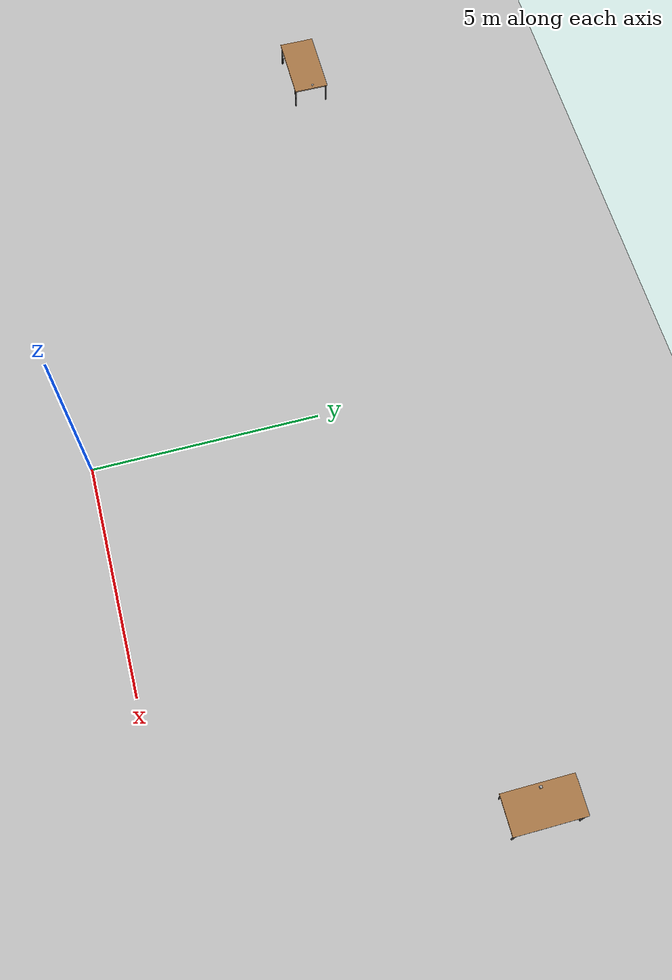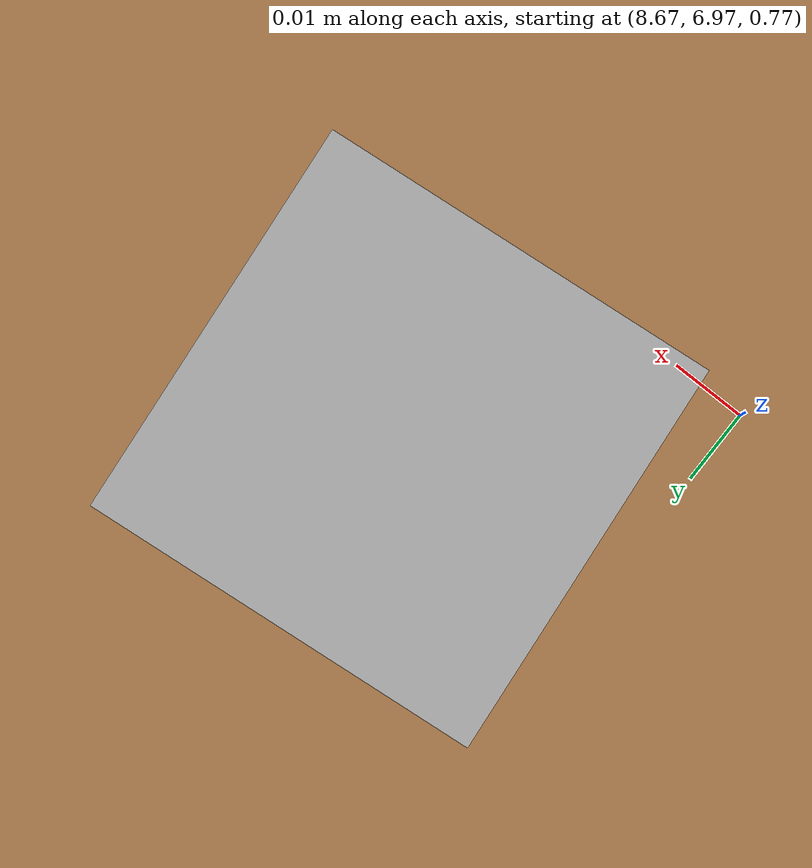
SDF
<sdf version="1.9">
 <world name="world_template">
  <physics type="ode">
   <max_step_size>0.004</max_step_size>
   <real_time_factor>1.0</real_time_factor>
   <real_time_update_rate>250</real_time_update_rate>
  </physics>
  <plugin filename="gz-sim-physics-system" name="gz::sim::systems::Physics"/>
  <plugin filename="gz-sim-user-commands-system" name="gz::sim::systems::UserCommands"/>
  <plugin filename="gz-sim-scene-broadcaster-system" name="gz::sim::systems::SceneBroadcaster"/>
  <plugin filename="gz-sim-sensors-system" name="gz::sim::systems::Sensors">
   <render_engine>ogre2</render_engine>
  </plugin>
  <plugin filename="gz-sim-imu-system" name="gz::sim::systems::Imu"/>
  <gravity>0.0 0.0 -9.8</gravity>
  <scene>
   <ambient>0.4 0.4 0.4 1</ambient>
   <background>0.7 0.7 0.7 1</background>
   <shadows>false</shadows>
   <grid>false</grid>
   <origin_visual>false</origin_visual>
  </scene>
  <light name="sun" type="directional">
   <pose>0 0 10 0 -0 0</pose>
   <diffuse>0.8 0.8 0.8 1</diffuse>
   <specular>0.2 0.2 0.2 1</specular>
   <attenuation>
    <range>1000</range>
    <constant>0.9</constant>
    <linear>0.01</linear>
    <quadratic>0.001</quadratic>
   </attenuation>
   <direction>-0.5 0.1 -0.9</direction>
  </light>
  <model name="ground_plane">
   <static>true</static>
   <link name="link">
    <collision name="collision">
     <geometry><plane><normal>0 0 1</normal><size>100 100</size></plane></geometry>
    </collision>
    <visual name="visual">
     <geometry><plane><normal>0 0 1</normal><size>100 100</size></plane></geometry>
     <material>
      <ambient>0.8 0.8 0.8 1</ambient>
      <diffuse>0.8 0.8 0.8 1</diffuse>
      <specular>0.8 0.8 0.8 1</specular>
     </material>
    </visual>
    <inertial>
     <mass>1</mass>
     <inertia><ixx>1</ixx><ixy>0</ixy><ixz>0</ixz><iyy>1</iyy><iyz>0</iyz><izz>1</izz></inertia>
    </inertial>
   </link>
  </model>
  <model name="Box1"><include><uri>model://Box1</uri><pose>8.7 7.0 0.8 0.0 0.0 0.1</pose></include></model>
  <model name="Box2">
   <include><uri>model://Box2</uri><pose>-8.367965507507324 7.052602767944336 0.62 0.0 0.0 0.1</pose></include>
  </model>
  <model name="table0">
   <include><uri>model://table</uri><pose>9 7 0.0 0.0 0.0 -1.5707963267948966</pose></include>
  </model>
  <model name="table1"><include><uri>model://table</uri><pose>-9 7 0.0 0.0 0.0 0.0</pose></include></model>
 </world>
</sdf>

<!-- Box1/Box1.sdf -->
<sdf version="1.6">

<model name="Box1">

  <static>false</static>

    <link name="Aruco_box">

    <!-- Box -->
      <visual name="Box">
        <pose>0.0 0 0 0 0 0</pose>
        <geometry>
          <box>
            <size>0.05 0.05 0.05</size>
          </box>
        </geometry>
        <material>
          <ambient>0.7 0.7 0.7 1</ambient>
          <diffuse>0.7 0.7 0.7 1</diffuse>
          <specular>0.1 0.1 0.1 1</specular>
        </material>
      </visual>

      <collision name="Box_collision">
        <pose>0.0 0 0 0 0 0</pose>
        <geometry>
          <box>
            <size>0.05 0.05 0.05</size>
          </box>
        </geometry>

  <surface>
    <friction>
      <ode>
        <mu>5.0</mu>
        <mu2>5.0</mu2>
      </ode>
    </friction>
  </surface>

      </collision>

      <!-- Top aruco face -->
     <visual name="Top">
        <pose>-0.025 0 0.025 0 1.57 0</pose>
        <geometry>
          <mesh>
            <uri>meshes/Box1.dae</uri>
            <scale>0.1 0.1 0.1</scale>
          </mesh>
        </geometry>
      </visual>

  <inertial>
    <mass value="0.5"/>
    <inertia ixx="0.001633333" ixy="0.0" ixz="0.0" iyy="0.001633333" iyz="0.0" izz="0.001633333"/>
  </inertial>

  </link>
  </model>

</sdf>

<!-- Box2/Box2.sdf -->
<sdf version="1.6">

<model name="Box2">

  <static>false</static>

    <link name="Aruco_box">

     <!-- Top aruco face -->
     <visual name="Top">
        <pose>0 0 0 0 1.57 0</pose>
        <geometry>
          <mesh>
            <uri>meshes/Box1.dae</uri>
            <scale>0.1 0.1 0.1</scale>
          </mesh>
        </geometry>
      </visual>

  <collision name="Box_collision">
        <pose>0 0 0 0 0 0</pose>
        <geometry>
          <box>
            <size>0.005 0.005 0.005</size>
          </box>
        </geometry>

  <surface>
    <friction>
      <ode>
        <mu>2.0</mu>
        <mu2>2.0</mu2>
      </ode>
    </friction>
  </surface>

  </collision>

  <inertial>
    <mass value="0.5"/>
    <inertia ixx="0.001633333" ixy="0.0" ixz="0.0" iyy="0.001633333" iyz="0.0" izz="0.001633333"/>
  </inertial>

  </link>
  </model>

</sdf>

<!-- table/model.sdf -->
<sdf version="1.5">
  <model name="table">
    <static>true</static>
    <link name="link">
      <collision name="surface">
        <pose>0 0 0.60 0 0 0</pose>
        <geometry>
          <box>
            <size>1.5 0.8 0.03</size>
          </box>
        </geometry>
        <surface>
          <friction>
            <ode>
              <mu>0.6</mu>
              <mu2>0.6</mu2>
            </ode>
          </friction>
        </surface>
      </collision>
      <visual name="visual1">
        <pose>0 0 0.60 0 0 0</pose>
        <geometry>
          <box>
            <size>1.5 0.8 0.03</size>
          </box>
        </geometry>
        <material>
          <ambient>0.6 0.4 0.2 1</ambient>
          <diffuse>0.7 0.5 0.3 1</diffuse>
          <specular>0.1 0.1 0.05 1</specular>
          <!-- PBR for Ignition, material scripts for gazebo classic-->
          <pbr>
            <metal>
              <albedo_map>Table_Diffuse.jpg</albedo_map>
            </metal>
          </pbr>
        </material>
      </visual>
      <collision name="front_left_leg">
        <pose>0.68 0.38 0.30 0 0 0</pose>
        <geometry>
          <cylinder>
            <radius>0.02</radius>
            <length>0.60</length>
          </cylinder>
        </geometry>
      </collision>
      <visual name="front_left_leg">
        <pose>0.68 0.38 0.30 0 0 0</pose>
        <geometry>
          <cylinder>
            <radius>0.02</radius>
            <length>0.60</length>
          </cylinder>
        </geometry>
        <material>
          <ambient>0.2 0.2 0.2 1</ambient>
          <diffuse>0.3 0.3 0.3 1</diffuse>
          <specular>0.1 0.1 0.1 1</specular>
        </material>
      </visual>
      <collision name="front_right_leg">
        <pose>0.68 -0.38 0.30 0 0 0</pose>
        <geometry>
          <cylinder>
            <radius>0.02</radius>
            <length>0.60</length>
          </cylinder>
        </geometry>
      </collision>
      <visual name="front_right_leg">
        <pose>0.68 -0.38 0.30 0 0 0</pose>
        <geometry>
          <cylinder>
            <radius>0.02</radius>
            <length>0.60</length>
          </cylinder>
        </geometry>
        <material>
          <ambient>0.2 0.2 0.2 1</ambient>
          <diffuse>0.3 0.3 0.3 1</diffuse>
          <specular>0.1 0.1 0.1 1</specular>
        </material>
      </visual>
      <collision name="back_right_leg">
        <pose>-0.68 -0.38 0.30 0 0 0</pose>
        <geometry>
          <cylinder>
            <radius>0.02</radius>
            <length>0.60</length>
          </cylinder>
        </geometry>
      </collision>
      <visual name="back_right_leg">
        <pose>-0.68 -0.38 0.30 0 0 0</pose>
        <geometry>
          <cylinder>
            <radius>0.02</radius>
            <length>0.60</length>
          </cylinder>
        </geometry>
        <material>
          <ambient>0.2 0.2 0.2 1</ambient>
          <diffuse>0.3 0.3 0.3 1</diffuse>
          <specular>0.1 0.1 0.1 1</specular>
        </material>
      </visual>
      <collision name="back_left_leg">
        <pose>-0.68 0.38 0.30 0 0 0</pose>
        <geometry>
          <cylinder>
            <radius>0.02</radius>
            <length>0.60</length>
          </cylinder>
        </geometry>
      </collision>
      <visual name="back_left_leg">
        <pose>-0.68 0.38 0.30 0 0 0</pose>
        <geometry>
          <cylinder>
            <radius>0.02</radius>
            <length>0.60</length>
          </cylinder>
        </geometry>
        <material>
          <ambient>0.2 0.2 0.2 1</ambient>
          <diffuse>0.3 0.3 0.3 1</diffuse>
          <specular>0.1 0.1 0.1 1</specular>
        </material>
      </visual>
    </link>
  </model>
</sdf>
